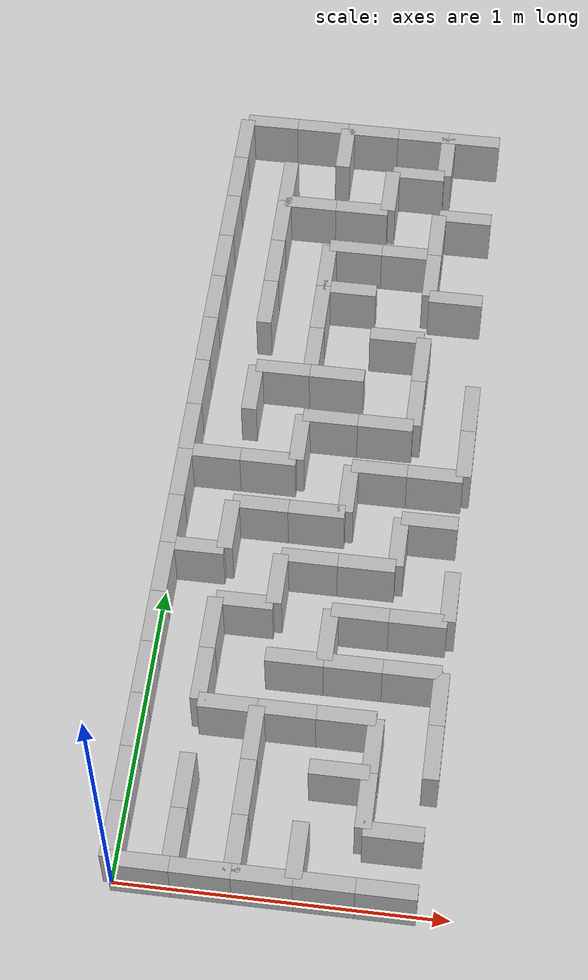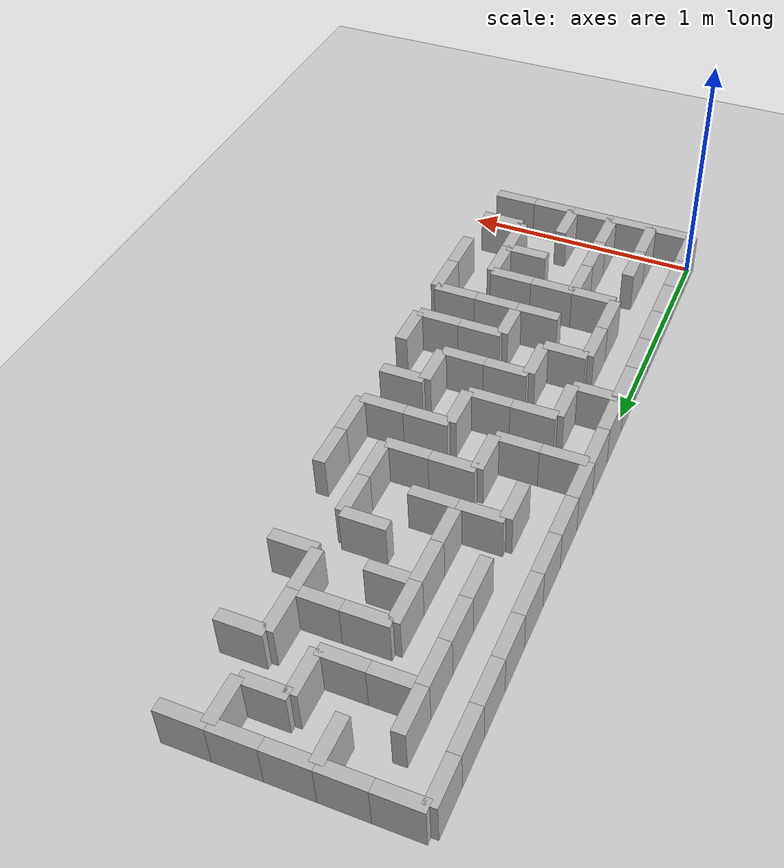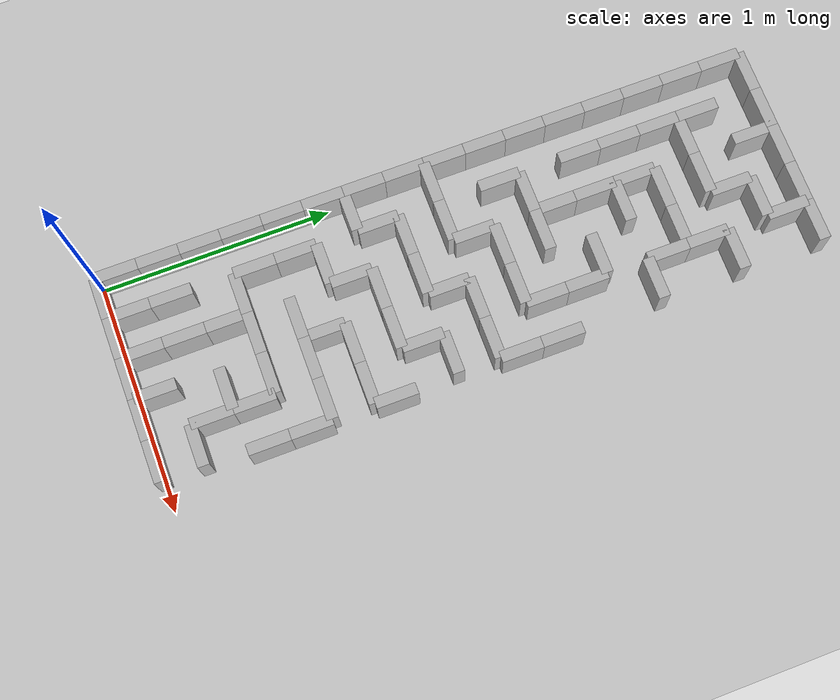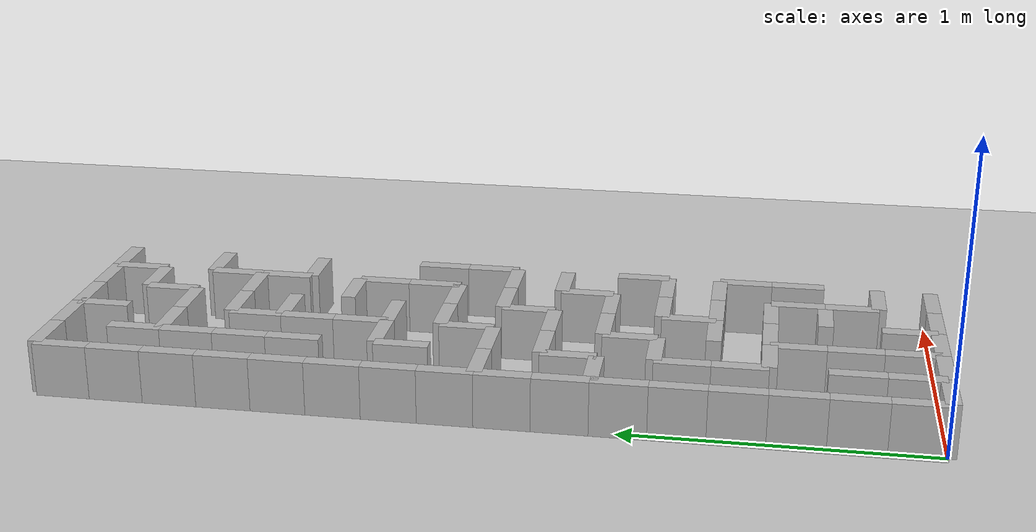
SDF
<sdf version="1.6">
 <world name="default">
  <model name="ground_plane">
   <static>1</static>
   <link name="link">
    <collision name="collision">
     <geometry><plane><normal>0 0 1</normal><size>100 100</size></plane></geometry>
     <surface><friction><ode><mu>100</mu><mu2>50</mu2></ode></friction></surface>
    </collision>
    <visual name="visual">
     <cast_shadows>0</cast_shadows>
     <geometry><plane><normal>0 0 1</normal><size>100 100</size></plane></geometry>
     <material>
      <script><uri>file://media/materials/scripts/gazebo.material</uri><name>Gazebo/Grey</name></script>
     </material>
    </visual>
   </link>
  </model>
  <model name="labyrinth_wall0">
   <pose>0.090000 0.000000 0.09 0 0 0.000000</pose>
   <link name="link">
    <inertial><mass>3.0</mass></inertial>
    <collision name="collision"><geometry><box><size>0.180 0.050 0.180</size></box></geometry></collision>
    <visual name="visual"><geometry><box><size>0.180 0.050 0.180</size></box></geometry></visual>
   </link>
   <static>true</static>
  </model>
  <model name="labyrinth_wall1">
   <pose>0.180000 0.090000 0.09 0 0 1.570796</pose>
   <link name="link">
    <inertial><mass>3.0</mass></inertial>
    <collision name="collision"><geometry><box><size>0.180 0.050 0.180</size></box></geometry></collision>
    <visual name="visual"><geometry><box><size>0.180 0.050 0.180</size></box></geometry></visual>
   </link>
   <static>true</static>
  </model>
  <model name="labyrinth_wall2">
   <pose>0.000000 0.090000 0.09 0 0 1.570796</pose>
   <link name="link">
    <inertial><mass>3.0</mass></inertial>
    <collision name="collision"><geometry><box><size>0.180 0.050 0.180</size></box></geometry></collision>
    <visual name="visual"><geometry><box><size>0.180 0.050 0.180</size></box></geometry></visual>
   </link>
   <static>true</static>
  </model>
  <model name="labyrinth_wall3">
   <pose>0.270000 0.000000 0.09 0 0 0.000000</pose>
   <link name="link">
    <inertial><mass>3.0</mass></inertial>
    <collision name="collision"><geometry><box><size>0.180 0.050 0.180</size></box></geometry></collision>
    <visual name="visual"><geometry><box><size>0.180 0.050 0.180</size></box></geometry></visual>
   </link>
   <static>true</static>
  </model>
  <model name="labyrinth_wall4">
   <pose>0.360000 0.090000 0.09 0 0 1.570796</pose>
   <link name="link">
    <inertial><mass>3.0</mass></inertial>
    <collision name="collision"><geometry><box><size>0.180 0.050 0.180</size></box></geometry></collision>
    <visual name="visual"><geometry><box><size>0.180 0.050 0.180</size></box></geometry></visual>
   </link>
   <static>true</static>
  </model>
  <model name="labyrinth_wall5">
   <pose>0.450000 0.000000 0.09 0 0 0.000000</pose>
   <link name="link">
    <inertial><mass>3.0</mass></inertial>
    <collision name="collision"><geometry><box><size>0.180 0.050 0.180</size></box></geometry></collision>
    <visual name="visual"><geometry><box><size>0.180 0.050 0.180</size></box></geometry></visual>
   </link>
   <static>true</static>
  </model>
  <model name="labyrinth_wall6">
   <pose>0.540000 0.090000 0.09 0 0 1.570796</pose>
   <link name="link">
    <inertial><mass>3.0</mass></inertial>
    <collision name="collision"><geometry><box><size>0.180 0.050 0.180</size></box></geometry></collision>
    <visual name="visual"><geometry><box><size>0.180 0.050 0.180</size></box></geometry></visual>
   </link>
   <static>true</static>
  </model>
  <model name="labyrinth_wall7">
   <pose>0.630000 0.000000 0.09 0 0 0.000000</pose>
   <link name="link">
    <inertial><mass>3.0</mass></inertial>
    <collision name="collision"><geometry><box><size>0.180 0.050 0.180</size></box></geometry></collision>
    <visual name="visual"><geometry><box><size>0.180 0.050 0.180</size></box></geometry></visual>
   </link>
   <static>true</static>
  </model>
  <model name="labyrinth_wall9">
   <pose>0.810000 0.000000 0.09 0 0 0.000000</pose>
   <link name="link">
    <inertial><mass>3.0</mass></inertial>
    <collision name="collision"><geometry><box><size>0.180 0.050 0.180</size></box></geometry></collision>
    <visual name="visual"><geometry><box><size>0.180 0.050 0.180</size></box></geometry></visual>
   </link>
   <static>true</static>
  </model>
  <model name="labyrinth_wall34">
   <pose>0.180000 0.270000 0.09 0 0 1.570796</pose>
   <link name="link">
    <inertial><mass>3.0</mass></inertial>
    <collision name="collision"><geometry><box><size>0.180 0.050 0.180</size></box></geometry></collision>
    <visual name="visual"><geometry><box><size>0.180 0.050 0.180</size></box></geometry></visual>
   </link>
   <static>true</static>
  </model>
  <model name="labyrinth_wall35">
   <pose>0.000000 0.270000 0.09 0 0 1.570796</pose>
   <link name="link">
    <inertial><mass>3.0</mass></inertial>
    <collision name="collision"><geometry><box><size>0.180 0.050 0.180</size></box></geometry></collision>
    <visual name="visual"><geometry><box><size>0.180 0.050 0.180</size></box></geometry></visual>
   </link>
   <static>true</static>
  </model>
  <model name="labyrinth_wall37">
   <pose>0.360000 0.270000 0.09 0 0 1.570796</pose>
   <link name="link">
    <inertial><mass>3.0</mass></inertial>
    <collision name="collision"><geometry><box><size>0.180 0.050 0.180</size></box></geometry></collision>
    <visual name="visual"><geometry><box><size>0.180 0.050 0.180</size></box></geometry></visual>
   </link>
   <static>true</static>
  </model>
  <model name="labyrinth_wall41">
   <pose>0.720000 0.270000 0.09 0 0 1.570796</pose>
   <link name="link">
    <inertial><mass>3.0</mass></inertial>
    <collision name="collision"><geometry><box><size>0.180 0.050 0.180</size></box></geometry></collision>
    <visual name="visual"><geometry><box><size>0.180 0.050 0.180</size></box></geometry></visual>
   </link>
   <static>true</static>
  </model>
  <model name="labyrinth_wall42">
   <pose>0.810000 0.180000 0.09 0 0 0.000000</pose>
   <link name="link">
    <inertial><mass>3.0</mass></inertial>
    <collision name="collision"><geometry><box><size>0.180 0.050 0.180</size></box></geometry></collision>
    <visual name="visual"><geometry><box><size>0.180 0.050 0.180</size></box></geometry></visual>
   </link>
   <static>true</static>
  </model>
  <model name="labyrinth_wall68">
   <pose>0.000000 0.450000 0.09 0 0 1.570796</pose>
   <link name="link">
    <inertial><mass>3.0</mass></inertial>
    <collision name="collision"><geometry><box><size>0.180 0.050 0.180</size></box></geometry></collision>
    <visual name="visual"><geometry><box><size>0.180 0.050 0.180</size></box></geometry></visual>
   </link>
   <static>true</static>
  </model>
  <model name="labyrinth_wall70">
   <pose>0.360000 0.450000 0.09 0 0 1.570796</pose>
   <link name="link">
    <inertial><mass>3.0</mass></inertial>
    <collision name="collision"><geometry><box><size>0.180 0.050 0.180</size></box></geometry></collision>
    <visual name="visual"><geometry><box><size>0.180 0.050 0.180</size></box></geometry></visual>
   </link>
   <static>true</static>
  </model>
  <model name="labyrinth_wall73">
   <pose>0.630000 0.360000 0.09 0 0 0.000000</pose>
   <link name="link">
    <inertial><mass>3.0</mass></inertial>
    <collision name="collision"><geometry><box><size>0.180 0.050 0.180</size></box></geometry></collision>
    <visual name="visual"><geometry><box><size>0.180 0.050 0.180</size></box></geometry></visual>
   </link>
   <static>true</static>
  </model>
  <model name="labyrinth_wall74">
   <pose>0.720000 0.450000 0.09 0 0 1.570796</pose>
   <link name="link">
    <inertial><mass>3.0</mass></inertial>
    <collision name="collision"><geometry><box><size>0.180 0.050 0.180</size></box></geometry></collision>
    <visual name="visual"><geometry><box><size>0.180 0.050 0.180</size></box></geometry></visual>
   </link>
   <static>true</static>
  </model>
  <model name="labyrinth_wall76">
   <pose>0.900000 0.450000 0.09 0 0 1.570796</pose>
   <link name="link">
    <inertial><mass>3.0</mass></inertial>
    <collision name="collision"><geometry><box><size>0.180 0.050 0.180</size></box></geometry></collision>
    <visual name="visual"><geometry><box><size>0.180 0.050 0.180</size></box></geometry></visual>
   </link>
   <static>true</static>
  </model>
  <model name="labyrinth_wall100">
   <pose>0.180000 0.630000 0.09 0 0 1.570796</pose>
   <link name="link">
    <inertial><mass>3.0</mass></inertial>
    <collision name="collision"><geometry><box><size>0.180 0.050 0.180</size></box></geometry></collision>
    <visual name="visual"><geometry><box><size>0.180 0.050 0.180</size></box></geometry></visual>
   </link>
   <static>true</static>
  </model>
  <model name="labyrinth_wall101">
   <pose>0.000000 0.630000 0.09 0 0 1.570796</pose>
   <link name="link">
    <inertial><mass>3.0</mass></inertial>
    <collision name="collision"><geometry><box><size>0.180 0.050 0.180</size></box></geometry></collision>
    <visual name="visual"><geometry><box><size>0.180 0.050 0.180</size></box></geometry></visual>
   </link>
   <static>true</static>
  </model>
  <model name="labyrinth_wall102">
   <pose>0.270000 0.540000 0.09 0 0 0.000000</pose>
   <link name="link">
    <inertial><mass>3.0</mass></inertial>
    <collision name="collision"><geometry><box><size>0.180 0.050 0.180</size></box></geometry></collision>
    <visual name="visual"><geometry><box><size>0.180 0.050 0.180</size></box></geometry></visual>
   </link>
   <static>true</static>
  </model>
  <model name="labyrinth_wall104">
   <pose>0.450000 0.540000 0.09 0 0 0.000000</pose>
   <link name="link">
    <inertial><mass>3.0</mass></inertial>
    <collision name="collision"><geometry><box><size>0.180 0.050 0.180</size></box></geometry></collision>
    <visual name="visual"><geometry><box><size>0.180 0.050 0.180</size></box></geometry></visual>
   </link>
   <static>true</static>
  </model>
  <model name="labyrinth_wall106">
   <pose>0.630000 0.540000 0.09 0 0 0.000000</pose>
   <link name="link">
    <inertial><mass>3.0</mass></inertial>
    <collision name="collision"><geometry><box><size>0.180 0.050 0.180</size></box></geometry></collision>
    <visual name="visual"><geometry><box><size>0.180 0.050 0.180</size></box></geometry></visual>
   </link>
   <static>true</static>
  </model>
  <model name="labyrinth_wall109">
   <pose>0.900000 0.630000 0.09 0 0 1.570796</pose>
   <link name="link">
    <inertial><mass>3.0</mass></inertial>
    <collision name="collision"><geometry><box><size>0.180 0.050 0.180</size></box></geometry></collision>
    <visual name="visual"><geometry><box><size>0.180 0.050 0.180</size></box></geometry></visual>
   </link>
   <static>true</static>
  </model>
  <model name="labyrinth_wall133">
   <pose>0.180000 0.810000 0.09 0 0 1.570796</pose>
   <link name="link">
    <inertial><mass>3.0</mass></inertial>
    <collision name="collision"><geometry><box><size>0.180 0.050 0.180</size></box></geometry></collision>
    <visual name="visual"><geometry><box><size>0.180 0.050 0.180</size></box></geometry></visual>
   </link>
   <static>true</static>
  </model>
  <model name="labyrinth_wall134">
   <pose>0.000000 0.810000 0.09 0 0 1.570796</pose>
   <link name="link">
    <inertial><mass>3.0</mass></inertial>
    <collision name="collision"><geometry><box><size>0.180 0.050 0.180</size></box></geometry></collision>
    <visual name="visual"><geometry><box><size>0.180 0.050 0.180</size></box></geometry></visual>
   </link>
   <static>true</static>
  </model>
  <model name="labyrinth_wall137">
   <pose>0.450000 0.720000 0.09 0 0 0.000000</pose>
   <link name="link">
    <inertial><mass>3.0</mass></inertial>
    <collision name="collision"><geometry><box><size>0.180 0.050 0.180</size></box></geometry></collision>
    <visual name="visual"><geometry><box><size>0.180 0.050 0.180</size></box></geometry></visual>
   </link>
   <static>true</static>
  </model>
  <model name="labyrinth_wall138">
   <pose>0.540000 0.810000 0.09 0 0 1.570796</pose>
   <link name="link">
    <inertial><mass>3.0</mass></inertial>
    <collision name="collision"><geometry><box><size>0.180 0.050 0.180</size></box></geometry></collision>
    <visual name="visual"><geometry><box><size>0.180 0.050 0.180</size></box></geometry></visual>
   </link>
   <static>true</static>
  </model>
  <model name="labyrinth_wall139">
   <pose>0.630000 0.720000 0.09 0 0 0.000000</pose>
   <link name="link">
    <inertial><mass>3.0</mass></inertial>
    <collision name="collision"><geometry><box><size>0.180 0.050 0.180</size></box></geometry></collision>
    <visual name="visual"><geometry><box><size>0.180 0.050 0.180</size></box></geometry></visual>
   </link>
   <static>true</static>
  </model>
  <model name="labyrinth_wall141">
   <pose>0.810000 0.720000 0.09 0 0 0.000000</pose>
   <link name="link">
    <inertial><mass>3.0</mass></inertial>
    <collision name="collision"><geometry><box><size>0.180 0.050 0.180</size></box></geometry></collision>
    <visual name="visual"><geometry><box><size>0.180 0.050 0.180</size></box></geometry></visual>
   </link>
   <static>true</static>
  </model>
  <model name="labyrinth_wall167">
   <pose>0.000000 0.990000 0.09 0 0 1.570796</pose>
   <link name="link">
    <inertial><mass>3.0</mass></inertial>
    <collision name="collision"><geometry><box><size>0.180 0.050 0.180</size></box></geometry></collision>
    <visual name="visual"><geometry><box><size>0.180 0.050 0.180</size></box></geometry></visual>
   </link>
   <static>true</static>
  </model>
  <model name="labyrinth_wall168">
   <pose>0.270000 0.900000 0.09 0 0 0.000000</pose>
   <link name="link">
    <inertial><mass>3.0</mass></inertial>
    <collision name="collision"><geometry><box><size>0.180 0.050 0.180</size></box></geometry></collision>
    <visual name="visual"><geometry><box><size>0.180 0.050 0.180</size></box></geometry></visual>
   </link>
   <static>true</static>
  </model>
  <model name="labyrinth_wall169">
   <pose>0.360000 0.990000 0.09 0 0 1.570796</pose>
   <link name="link">
    <inertial><mass>3.0</mass></inertial>
    <collision name="collision"><geometry><box><size>0.180 0.050 0.180</size></box></geometry></collision>
    <visual name="visual"><geometry><box><size>0.180 0.050 0.180</size></box></geometry></visual>
   </link>
   <static>true</static>
  </model>
  <model name="labyrinth_wall172">
   <pose>0.630000 0.900000 0.09 0 0 0.000000</pose>
   <link name="link">
    <inertial><mass>3.0</mass></inertial>
    <collision name="collision"><geometry><box><size>0.180 0.050 0.180</size></box></geometry></collision>
    <visual name="visual"><geometry><box><size>0.180 0.050 0.180</size></box></geometry></visual>
   </link>
   <static>true</static>
  </model>
  <model name="labyrinth_wall174">
   <pose>0.810000 0.900000 0.09 0 0 0.000000</pose>
   <link name="link">
    <inertial><mass>3.0</mass></inertial>
    <collision name="collision"><geometry><box><size>0.180 0.050 0.180</size></box></geometry></collision>
    <visual name="visual"><geometry><box><size>0.180 0.050 0.180</size></box></geometry></visual>
   </link>
   <static>true</static>
  </model>
  <model name="labyrinth_wall175">
   <pose>0.900000 0.990000 0.09 0 0 1.570796</pose>
   <link name="link">
    <inertial><mass>3.0</mass></inertial>
    <collision name="collision"><geometry><box><size>0.180 0.050 0.180</size></box></geometry></collision>
    <visual name="visual"><geometry><box><size>0.180 0.050 0.180</size></box></geometry></visual>
   </link>
   <static>true</static>
  </model>
  <model name="labyrinth_wall198">
   <pose>0.090000 1.080000 0.09 0 0 0.000000</pose>
   <link name="link">
    <inertial><mass>3.0</mass></inertial>
    <collision name="collision"><geometry><box><size>0.180 0.050 0.180</size></box></geometry></collision>
    <visual name="visual"><geometry><box><size>0.180 0.050 0.180</size></box></geometry></visual>
   </link>
   <static>true</static>
  </model>
  <model name="labyrinth_wall199">
   <pose>0.180000 1.170000 0.09 0 0 1.570796</pose>
   <link name="link">
    <inertial><mass>3.0</mass></inertial>
    <collision name="collision"><geometry><box><size>0.180 0.050 0.180</size></box></geometry></collision>
    <visual name="visual"><geometry><box><size>0.180 0.050 0.180</size></box></geometry></visual>
   </link>
   <static>true</static>
  </model>
  <model name="labyrinth_wall200">
   <pose>0.000000 1.170000 0.09 0 0 1.570796</pose>
   <link name="link">
    <inertial><mass>3.0</mass></inertial>
    <collision name="collision"><geometry><box><size>0.180 0.050 0.180</size></box></geometry></collision>
    <visual name="visual"><geometry><box><size>0.180 0.050 0.180</size></box></geometry></visual>
   </link>
   <static>true</static>
  </model>
  <model name="labyrinth_wall203">
   <pose>0.450000 1.080000 0.09 0 0 0.000000</pose>
   <link name="link">
    <inertial><mass>3.0</mass></inertial>
    <collision name="collision"><geometry><box><size>0.180 0.050 0.180</size></box></geometry></collision>
    <visual name="visual"><geometry><box><size>0.180 0.050 0.180</size></box></geometry></visual>
   </link>
   <static>true</static>
  </model>
  <model name="labyrinth_wall205">
   <pose>0.630000 1.080000 0.09 0 0 0.000000</pose>
   <link name="link">
    <inertial><mass>3.0</mass></inertial>
    <collision name="collision"><geometry><box><size>0.180 0.050 0.180</size></box></geometry></collision>
    <visual name="visual"><geometry><box><size>0.180 0.050 0.180</size></box></geometry></visual>
   </link>
   <static>true</static>
  </model>
  <model name="labyrinth_wall206">
   <pose>0.720000 1.170000 0.09 0 0 1.570796</pose>
   <link name="link">
    <inertial><mass>3.0</mass></inertial>
    <collision name="collision"><geometry><box><size>0.180 0.050 0.180</size></box></geometry></collision>
    <visual name="visual"><geometry><box><size>0.180 0.050 0.180</size></box></geometry></visual>
   </link>
   <static>true</static>
  </model>
  <model name="labyrinth_wall233">
   <pose>0.000000 1.350000 0.09 0 0 1.570796</pose>
   <link name="link">
    <inertial><mass>3.0</mass></inertial>
    <collision name="collision"><geometry><box><size>0.180 0.050 0.180</size></box></geometry></collision>
    <visual name="visual"><geometry><box><size>0.180 0.050 0.180</size></box></geometry></visual>
   </link>
   <static>true</static>
  </model>
  <model name="labyrinth_wall234">
   <pose>0.270000 1.260000 0.09 0 0 0.000000</pose>
   <link name="link">
    <inertial><mass>3.0</mass></inertial>
    <collision name="collision"><geometry><box><size>0.180 0.050 0.180</size></box></geometry></collision>
    <visual name="visual"><geometry><box><size>0.180 0.050 0.180</size></box></geometry></visual>
   </link>
   <static>true</static>
  </model>
  <model name="labyrinth_wall236">
   <pose>0.450000 1.260000 0.09 0 0 0.000000</pose>
   <link name="link">
    <inertial><mass>3.0</mass></inertial>
    <collision name="collision"><geometry><box><size>0.180 0.050 0.180</size></box></geometry></collision>
    <visual name="visual"><geometry><box><size>0.180 0.050 0.180</size></box></geometry></visual>
   </link>
   <static>true</static>
  </model>
  <model name="labyrinth_wall237">
   <pose>0.540000 1.350000 0.09 0 0 1.570796</pose>
   <link name="link">
    <inertial><mass>3.0</mass></inertial>
    <collision name="collision"><geometry><box><size>0.180 0.050 0.180</size></box></geometry></collision>
    <visual name="visual"><geometry><box><size>0.180 0.050 0.180</size></box></geometry></visual>
   </link>
   <static>true</static>
  </model>
  <model name="labyrinth_wall240">
   <pose>0.810000 1.260000 0.09 0 0 0.000000</pose>
   <link name="link">
    <inertial><mass>3.0</mass></inertial>
    <collision name="collision"><geometry><box><size>0.180 0.050 0.180</size></box></geometry></collision>
    <visual name="visual"><geometry><box><size>0.180 0.050 0.180</size></box></geometry></visual>
   </link>
   <static>true</static>
  </model>
  <model name="labyrinth_wall264">
   <pose>0.090000 1.440000 0.09 0 0 0.000000</pose>
   <link name="link">
    <inertial><mass>3.0</mass></inertial>
    <collision name="collision"><geometry><box><size>0.180 0.050 0.180</size></box></geometry></collision>
    <visual name="visual"><geometry><box><size>0.180 0.050 0.180</size></box></geometry></visual>
   </link>
   <static>true</static>
  </model>
  <model name="labyrinth_wall266">
   <pose>0.000000 1.530000 0.09 0 0 1.570796</pose>
   <link name="link">
    <inertial><mass>3.0</mass></inertial>
    <collision name="collision"><geometry><box><size>0.180 0.050 0.180</size></box></geometry></collision>
    <visual name="visual"><geometry><box><size>0.180 0.050 0.180</size></box></geometry></visual>
   </link>
   <static>true</static>
  </model>
  <model name="labyrinth_wall267">
   <pose>0.270000 1.440000 0.09 0 0 0.000000</pose>
   <link name="link">
    <inertial><mass>3.0</mass></inertial>
    <collision name="collision"><geometry><box><size>0.180 0.050 0.180</size></box></geometry></collision>
    <visual name="visual"><geometry><box><size>0.180 0.050 0.180</size></box></geometry></visual>
   </link>
   <static>true</static>
  </model>
  <model name="labyrinth_wall268">
   <pose>0.360000 1.530000 0.09 0 0 1.570796</pose>
   <link name="link">
    <inertial><mass>3.0</mass></inertial>
    <collision name="collision"><geometry><box><size>0.180 0.050 0.180</size></box></geometry></collision>
    <visual name="visual"><geometry><box><size>0.180 0.050 0.180</size></box></geometry></visual>
   </link>
   <static>true</static>
  </model>
  <model name="labyrinth_wall271">
   <pose>0.630000 1.440000 0.09 0 0 0.000000</pose>
   <link name="link">
    <inertial><mass>3.0</mass></inertial>
    <collision name="collision"><geometry><box><size>0.180 0.050 0.180</size></box></geometry></collision>
    <visual name="visual"><geometry><box><size>0.180 0.050 0.180</size></box></geometry></visual>
   </link>
   <static>true</static>
  </model>
  <model name="labyrinth_wall273">
   <pose>0.810000 1.440000 0.09 0 0 0.000000</pose>
   <link name="link">
    <inertial><mass>3.0</mass></inertial>
    <collision name="collision"><geometry><box><size>0.180 0.050 0.180</size></box></geometry></collision>
    <visual name="visual"><geometry><box><size>0.180 0.050 0.180</size></box></geometry></visual>
   </link>
   <static>true</static>
  </model>
  <model name="labyrinth_wall274">
   <pose>0.900000 1.530000 0.09 0 0 1.570796</pose>
   <link name="link">
    <inertial><mass>3.0</mass></inertial>
    <collision name="collision"><geometry><box><size>0.180 0.050 0.180</size></box></geometry></collision>
    <visual name="visual"><geometry><box><size>0.180 0.050 0.180</size></box></geometry></visual>
   </link>
   <static>true</static>
  </model>
  <model name="labyrinth_wall298">
   <pose>0.180000 1.710000 0.09 0 0 1.570796</pose>
   <link name="link">
    <inertial><mass>3.0</mass></inertial>
    <collision name="collision"><geometry><box><size>0.180 0.050 0.180</size></box></geometry></collision>
    <visual name="visual"><geometry><box><size>0.180 0.050 0.180</size></box></geometry></visual>
   </link>
   <static>true</static>
  </model>
  <model name="labyrinth_wall299">
   <pose>0.000000 1.710000 0.09 0 0 1.570796</pose>
   <link name="link">
    <inertial><mass>3.0</mass></inertial>
    <collision name="collision"><geometry><box><size>0.180 0.050 0.180</size></box></geometry></collision>
    <visual name="visual"><geometry><box><size>0.180 0.050 0.180</size></box></geometry></visual>
   </link>
   <static>true</static>
  </model>
  <model name="labyrinth_wall302">
   <pose>0.450000 1.620000 0.09 0 0 0.000000</pose>
   <link name="link">
    <inertial><mass>3.0</mass></inertial>
    <collision name="collision"><geometry><box><size>0.180 0.050 0.180</size></box></geometry></collision>
    <visual name="visual"><geometry><box><size>0.180 0.050 0.180</size></box></geometry></visual>
   </link>
   <static>true</static>
  </model>
  <model name="labyrinth_wall304">
   <pose>0.630000 1.620000 0.09 0 0 0.000000</pose>
   <link name="link">
    <inertial><mass>3.0</mass></inertial>
    <collision name="collision"><geometry><box><size>0.180 0.050 0.180</size></box></geometry></collision>
    <visual name="visual"><geometry><box><size>0.180 0.050 0.180</size></box></geometry></visual>
   </link>
   <static>true</static>
  </model>
  <model name="labyrinth_wall305">
   <pose>0.720000 1.710000 0.09 0 0 1.570796</pose>
   <link name="link">
    <inertial><mass>3.0</mass></inertial>
    <collision name="collision"><geometry><box><size>0.180 0.050 0.180</size></box></geometry></collision>
    <visual name="visual"><geometry><box><size>0.180 0.050 0.180</size></box></geometry></visual>
   </link>
   <static>true</static>
  </model>
  <model name="labyrinth_wall307">
   <pose>0.900000 1.710000 0.09 0 0 1.570796</pose>
   <link name="link">
    <inertial><mass>3.0</mass></inertial>
    <collision name="collision"><geometry><box><size>0.180 0.050 0.180</size></box></geometry></collision>
    <visual name="visual"><geometry><box><size>0.180 0.050 0.180</size></box></geometry></visual>
   </link>
   <static>true</static>
  </model>
  <model name="labyrinth_wall332">
   <pose>0.000000 1.890000 0.09 0 0 1.570796</pose>
   <link name="link">
    <inertial><mass>3.0</mass></inertial>
    <collision name="collision"><geometry><box><size>0.180 0.050 0.180</size></box></geometry></collision>
    <visual name="visual"><geometry><box><size>0.180 0.050 0.180</size></box></geometry></visual>
   </link>
   <static>true</static>
  </model>
  <model name="labyrinth_wall333">
   <pose>0.270000 1.800000 0.09 0 0 0.000000</pose>
   <link name="link">
    <inertial><mass>3.0</mass></inertial>
    <collision name="collision"><geometry><box><size>0.180 0.050 0.180</size></box></geometry></collision>
    <visual name="visual"><geometry><box><size>0.180 0.050 0.180</size></box></geometry></visual>
   </link>
   <static>true</static>
  </model>
  <model name="labyrinth_wall334">
   <pose>0.360000 1.890000 0.09 0 0 1.570796</pose>
   <link name="link">
    <inertial><mass>3.0</mass></inertial>
    <collision name="collision"><geometry><box><size>0.180 0.050 0.180</size></box></geometry></collision>
    <visual name="visual"><geometry><box><size>0.180 0.050 0.180</size></box></geometry></visual>
   </link>
   <static>true</static>
  </model>
  <model name="labyrinth_wall335">
   <pose>0.450000 1.800000 0.09 0 0 0.000000</pose>
   <link name="link">
    <inertial><mass>3.0</mass></inertial>
    <collision name="collision"><geometry><box><size>0.180 0.050 0.180</size></box></geometry></collision>
    <visual name="visual"><geometry><box><size>0.180 0.050 0.180</size></box></geometry></visual>
   </link>
   <static>true</static>
  </model>
  <model name="labyrinth_wall338">
   <pose>0.720000 1.890000 0.09 0 0 1.570796</pose>
   <link name="link">
    <inertial><mass>3.0</mass></inertial>
    <collision name="collision"><geometry><box><size>0.180 0.050 0.180</size></box></geometry></collision>
    <visual name="visual"><geometry><box><size>0.180 0.050 0.180</size></box></geometry></visual>
   </link>
   <static>true</static>
  </model>
  <model name="labyrinth_wall364">
   <pose>0.180000 2.070000 0.09 0 0 1.570796</pose>
   <link name="link">
    <inertial><mass>3.0</mass></inertial>
    <collision name="collision"><geometry><box><size>0.180 0.050 0.180</size></box></geometry></collision>
    <visual name="visual"><geometry><box><size>0.180 0.050 0.180</size></box></geometry></visual>
   </link>
   <static>true</static>
  </model>
  <model name="labyrinth_wall365">
   <pose>0.000000 2.070000 0.09 0 0 1.570796</pose>
   <link name="link">
    <inertial><mass>3.0</mass></inertial>
    <collision name="collision"><geometry><box><size>0.180 0.050 0.180</size></box></geometry></collision>
    <visual name="visual"><geometry><box><size>0.180 0.050 0.180</size></box></geometry></visual>
   </link>
   <static>true</static>
  </model>
  <model name="labyrinth_wall367">
   <pose>0.360000 2.070000 0.09 0 0 1.570796</pose>
   <link name="link">
    <inertial><mass>3.0</mass></inertial>
    <collision name="collision"><geometry><box><size>0.180 0.050 0.180</size></box></geometry></collision>
    <visual name="visual"><geometry><box><size>0.180 0.050 0.180</size></box></geometry></visual>
   </link>
   <static>true</static>
  </model>
  <model name="labyrinth_wall370">
   <pose>0.630000 1.980000 0.09 0 0 0.000000</pose>
   <link name="link">
    <inertial><mass>3.0</mass></inertial>
    <collision name="collision"><geometry><box><size>0.180 0.050 0.180</size></box></geometry></collision>
    <visual name="visual"><geometry><box><size>0.180 0.050 0.180</size></box></geometry></visual>
   </link>
   <static>true</static>
  </model>
  <model name="labyrinth_wall397">
   <pose>0.180000 2.250000 0.09 0 0 1.570796</pose>
   <link name="link">
    <inertial><mass>3.0</mass></inertial>
    <collision name="collision"><geometry><box><size>0.180 0.050 0.180</size></box></geometry></collision>
    <visual name="visual"><geometry><box><size>0.180 0.050 0.180</size></box></geometry></visual>
   </link>
   <static>true</static>
  </model>
  <model name="labyrinth_wall398">
   <pose>0.000000 2.250000 0.09 0 0 1.570796</pose>
   <link name="link">
    <inertial><mass>3.0</mass></inertial>
    <collision name="collision"><geometry><box><size>0.180 0.050 0.180</size></box></geometry></collision>
    <visual name="visual"><geometry><box><size>0.180 0.050 0.180</size></box></geometry></visual>
   </link>
   <static>true</static>
  </model>
  <model name="labyrinth_wall400">
   <pose>0.360000 2.250000 0.09 0 0 1.570796</pose>
   <link name="link">
    <inertial><mass>3.0</mass></inertial>
    <collision name="collision"><geometry><box><size>0.180 0.050 0.180</size></box></geometry></collision>
    <visual name="visual"><geometry><box><size>0.180 0.050 0.180</size></box></geometry></visual>
   </link>
   <static>true</static>
  </model>
  <model name="labyrinth_wall401">
   <pose>0.450000 2.160000 0.09 0 0 0.000000</pose>
   <link name="link">
    <inertial><mass>3.0</mass></inertial>
    <collision name="collision"><geometry><box><size>0.180 0.050 0.180</size></box></geometry></collision>
    <visual name="visual"><geometry><box><size>0.180 0.050 0.180</size></box></geometry></visual>
   </link>
   <static>true</static>
  </model>
  <model name="labyrinth_wall404">
   <pose>0.720000 2.250000 0.09 0 0 1.570796</pose>
   <link name="link">
    <inertial><mass>3.0</mass></inertial>
    <collision name="collision"><geometry><box><size>0.180 0.050 0.180</size></box></geometry></collision>
    <visual name="visual"><geometry><box><size>0.180 0.050 0.180</size></box></geometry></visual>
   </link>
   <static>true</static>
  </model>
  <model name="labyrinth_wall405">
   <pose>0.810000 2.160000 0.09 0 0 0.000000</pose>
   <link name="link">
    <inertial><mass>3.0</mass></inertial>
    <collision name="collision"><geometry><box><size>0.180 0.050 0.180</size></box></geometry></collision>
    <visual name="visual"><geometry><box><size>0.180 0.050 0.180</size></box></geometry></visual>
   </link>
   <static>true</static>
  </model>
  <model name="labyrinth_wall430">
   <pose>0.180000 2.430000 0.09 0 0 1.570796</pose>
   <link name="link">
    <inertial><mass>3.0</mass></inertial>
    <collision name="collision"><geometry><box><size>0.180 0.050 0.180</size></box></geometry></collision>
    <visual name="visual"><geometry><box><size>0.180 0.050 0.180</size></box></geometry></visual>
   </link>
   <static>true</static>
  </model>
  <model name="labyrinth_wall431">
   <pose>0.000000 2.430000 0.09 0 0 1.570796</pose>
   <link name="link">
    <inertial><mass>3.0</mass></inertial>
    <collision name="collision"><geometry><box><size>0.180 0.050 0.180</size></box></geometry></collision>
    <visual name="visual"><geometry><box><size>0.180 0.050 0.180</size></box></geometry></visual>
   </link>
   <static>true</static>
  </model>
  <model name="labyrinth_wall434">
   <pose>0.450000 2.340000 0.09 0 0 0.000000</pose>
   <link name="link">
    <inertial><mass>3.0</mass></inertial>
    <collision name="collision"><geometry><box><size>0.180 0.050 0.180</size></box></geometry></collision>
    <visual name="visual"><geometry><box><size>0.180 0.050 0.180</size></box></geometry></visual>
   </link>
   <static>true</static>
  </model>
  <model name="labyrinth_wall436">
   <pose>0.630000 2.340000 0.09 0 0 0.000000</pose>
   <link name="link">
    <inertial><mass>3.0</mass></inertial>
    <collision name="collision"><geometry><box><size>0.180 0.050 0.180</size></box></geometry></collision>
    <visual name="visual"><geometry><box><size>0.180 0.050 0.180</size></box></geometry></visual>
   </link>
   <static>true</static>
  </model>
  <model name="labyrinth_wall437">
   <pose>0.720000 2.430000 0.09 0 0 1.570796</pose>
   <link name="link">
    <inertial><mass>3.0</mass></inertial>
    <collision name="collision"><geometry><box><size>0.180 0.050 0.180</size></box></geometry></collision>
    <visual name="visual"><geometry><box><size>0.180 0.050 0.180</size></box></geometry></visual>
   </link>
   <static>true</static>
  </model>
  <model name="labyrinth_wall463">
   <pose>0.180000 2.610000 0.09 0 0 1.570796</pose>
   <link name="link">
    <inertial><mass>3.0</mass></inertial>
    <collision name="collision"><geometry><box><size>0.180 0.050 0.180</size></box></geometry></collision>
    <visual name="visual"><geometry><box><size>0.180 0.050 0.180</size></box></geometry></visual>
   </link>
   <static>true</static>
  </model>
  <model name="labyrinth_wall464">
   <pose>0.000000 2.610000 0.09 0 0 1.570796</pose>
   <link name="link">
    <inertial><mass>3.0</mass></inertial>
    <collision name="collision"><geometry><box><size>0.180 0.050 0.180</size></box></geometry></collision>
    <visual name="visual"><geometry><box><size>0.180 0.050 0.180</size></box></geometry></visual>
   </link>
   <static>true</static>
  </model>
  <model name="labyrinth_wall465">
   <pose>0.270000 2.520000 0.09 0 0 0.000000</pose>
   <link name="link">
    <inertial><mass>3.0</mass></inertial>
    <collision name="collision"><geometry><box><size>0.180 0.050 0.180</size></box></geometry></collision>
    <visual name="visual"><geometry><box><size>0.180 0.050 0.180</size></box></geometry></visual>
   </link>
   <static>true</static>
  </model>
  <model name="labyrinth_wall467">
   <pose>0.450000 2.520000 0.09 0 0 0.000000</pose>
   <link name="link">
    <inertial><mass>3.0</mass></inertial>
    <collision name="collision"><geometry><box><size>0.180 0.050 0.180</size></box></geometry></collision>
    <visual name="visual"><geometry><box><size>0.180 0.050 0.180</size></box></geometry></visual>
   </link>
   <static>true</static>
  </model>
  <model name="labyrinth_wall468">
   <pose>0.540000 2.610000 0.09 0 0 1.570796</pose>
   <link name="link">
    <inertial><mass>3.0</mass></inertial>
    <collision name="collision"><geometry><box><size>0.180 0.050 0.180</size></box></geometry></collision>
    <visual name="visual"><geometry><box><size>0.180 0.050 0.180</size></box></geometry></visual>
   </link>
   <static>true</static>
  </model>
  <model name="labyrinth_wall471">
   <pose>0.810000 2.520000 0.09 0 0 0.000000</pose>
   <link name="link">
    <inertial><mass>3.0</mass></inertial>
    <collision name="collision"><geometry><box><size>0.180 0.050 0.180</size></box></geometry></collision>
    <visual name="visual"><geometry><box><size>0.180 0.050 0.180</size></box></geometry></visual>
   </link>
   <static>true</static>
  </model>
  <model name="labyrinth_wall497">
   <pose>0.090000 2.880000 0.09 0 0 0.000000</pose>
   <link name="link">
    <inertial><mass>3.0</mass></inertial>
    <collision name="collision"><geometry><box><size>0.180 0.050 0.180</size></box></geometry></collision>
    <visual name="visual"><geometry><box><size>0.180 0.050 0.180</size></box></geometry></visual>
   </link>
   <static>true</static>
  </model>
  <model name="labyrinth_wall498">
   <pose>0.000000 2.790000 0.09 0 0 1.570796</pose>
   <link name="link">
    <inertial><mass>3.0</mass></inertial>
    <collision name="collision"><geometry><box><size>0.180 0.050 0.180</size></box></geometry></collision>
    <visual name="visual"><geometry><box><size>0.180 0.050 0.180</size></box></geometry></visual>
   </link>
   <static>true</static>
  </model>
  <model name="labyrinth_wall500">
   <pose>0.360000 2.790000 0.09 0 0 1.570796</pose>
   <link name="link">
    <inertial><mass>3.0</mass></inertial>
    <collision name="collision"><geometry><box><size>0.180 0.050 0.180</size></box></geometry></collision>
    <visual name="visual"><geometry><box><size>0.180 0.050 0.180</size></box></geometry></visual>
   </link>
   <static>true</static>
  </model>
  <model name="labyrinth_wall501">
   <pose>0.270000 2.880000 0.09 0 0 0.000000</pose>
   <link name="link">
    <inertial><mass>3.0</mass></inertial>
    <collision name="collision"><geometry><box><size>0.180 0.050 0.180</size></box></geometry></collision>
    <visual name="visual"><geometry><box><size>0.180 0.050 0.180</size></box></geometry></visual>
   </link>
   <static>true</static>
  </model>
  <model name="labyrinth_wall504">
   <pose>0.450000 2.880000 0.09 0 0 0.000000</pose>
   <link name="link">
    <inertial><mass>3.0</mass></inertial>
    <collision name="collision"><geometry><box><size>0.180 0.050 0.180</size></box></geometry></collision>
    <visual name="visual"><geometry><box><size>0.180 0.050 0.180</size></box></geometry></visual>
   </link>
   <static>true</static>
  </model>
  <model name="labyrinth_wall505">
   <pose>0.630000 2.700000 0.09 0 0 0.000000</pose>
   <link name="link">
    <inertial><mass>3.0</mass></inertial>
    <collision name="collision"><geometry><box><size>0.180 0.050 0.180</size></box></geometry></collision>
    <visual name="visual"><geometry><box><size>0.180 0.050 0.180</size></box></geometry></visual>
   </link>
   <static>true</static>
  </model>
  <model name="labyrinth_wall506">
   <pose>0.720000 2.790000 0.09 0 0 1.570796</pose>
   <link name="link">
    <inertial><mass>3.0</mass></inertial>
    <collision name="collision"><geometry><box><size>0.180 0.050 0.180</size></box></geometry></collision>
    <visual name="visual"><geometry><box><size>0.180 0.050 0.180</size></box></geometry></visual>
   </link>
   <static>true</static>
  </model>
  <model name="labyrinth_wall507">
   <pose>0.630000 2.880000 0.09 0 0 0.000000</pose>
   <link name="link">
    <inertial><mass>3.0</mass></inertial>
    <collision name="collision"><geometry><box><size>0.180 0.050 0.180</size></box></geometry></collision>
    <visual name="visual"><geometry><box><size>0.180 0.050 0.180</size></box></geometry></visual>
   </link>
   <static>true</static>
  </model>
  <model name="labyrinth_wall510">
   <pose>0.810000 2.880000 0.09 0 0 0.000000</pose>
   <link name="link">
    <inertial><mass>3.0</mass></inertial>
    <collision name="collision"><geometry><box><size>0.180 0.050 0.180</size></box></geometry></collision>
    <visual name="visual"><geometry><box><size>0.180 0.050 0.180</size></box></geometry></visual>
   </link>
   <static>true</static>
  </model>
 </world>
</sdf>
